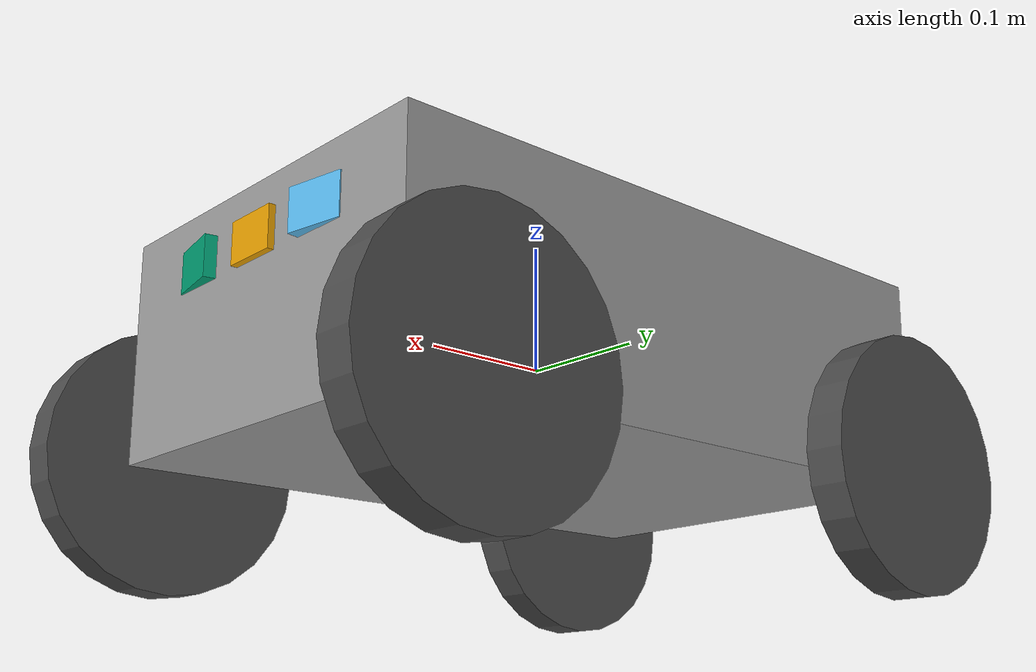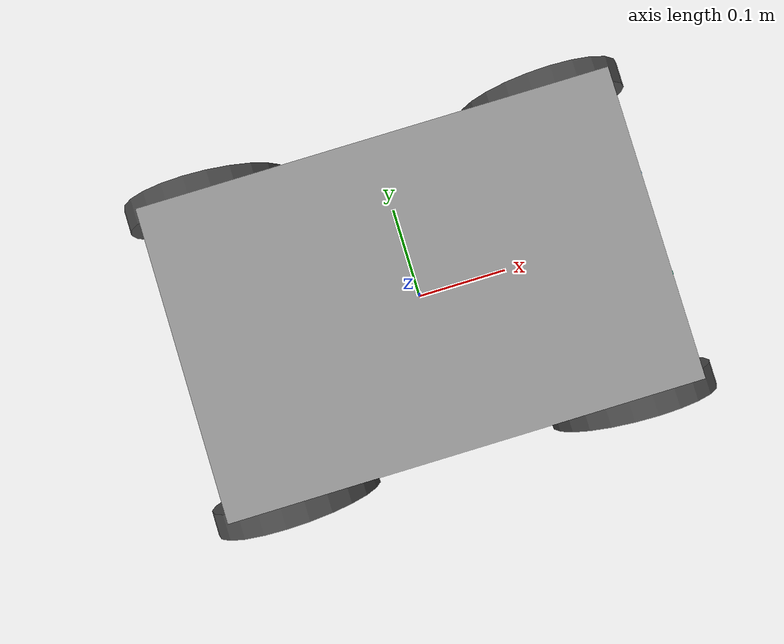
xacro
<?xml version="1.0"?>

<robot name="differential_drive_robot" xmlns:xacro="http://www.ros.org/wiki/xacro">

  <!-- Including other files -->
  <xacro:include filename="ultrasounds.xacro" />
  <xacro:include filename="ros2_control.xacro" />

  <!-- Body Dimensions -->
  <xacro:property name="body_link_x_dim" value="0.5"/>
  <xacro:property name="body_link_y_dim" value="0.33"/>
  <xacro:property name="body_link_z_dim" value="0.168"/>

  <!-- Wheel Dimensions -->
  <xacro:property name="wheel_link_radius" value="0.1"/>  <!-- 10 cm radio -->
  <xacro:property name="wheel_link_length" value="0.03"/>
  <xacro:property name="wheel_link_z_location" value="-0.075"/>
  <xacro:property name="wheel_link_y_location" value="0.005"/>

  <!-- Pi Constant -->
  <xacro:property name="pi_const" value="3.14159265"/>

  <!-- Robot Body and Wheel Mass -->
  <xacro:property name="body_mass" value="3.5"/>
  <xacro:property name="wheel_mass" value="0.35"/>

  <!-- Moments of Inertia of the Wheel -->
  <xacro:property name="Iz_wheel" value="${0.5*wheel_mass*wheel_link_radius*wheel_link_radius}"/>
  <xacro:property name="I_wheel"  value="${(1.0/12.0)*wheel_mass*(3*wheel_link_radius*wheel_link_radius+wheel_link_length*wheel_link_length)}"/>

  <xacro:macro name="inertia_wheel">
    <inertial>
      <origin xyz="0.0 0.0 0.0" rpy="0.0 0.0 0.0"/>
      <mass value="${wheel_mass}"/>
      <inertia ixx="${I_wheel}" ixy="0.0" ixz="0.0"
               iyy="${I_wheel}" iyz="0.0" izz="${Iz_wheel}" />
    </inertial>
  </xacro:macro>

  <!-- Extra Gazebo Options -->
  <xacro:include filename="$(find lawn_robot)/model/robot.gazebo" />

  <!-- Dummy link, otherwise Gazebo will complain -->
  <link name="dummy"/>
  <joint name="dummy_joint" type="fixed">
    <parent link="dummy"/>
    <child link="body_link"/>
  </joint>

  <!-- BODY LINK -->
  <link name="body_link">
    <visual>
      <geometry>
        <box size="${body_link_x_dim} ${body_link_y_dim} ${body_link_z_dim}" />
      </geometry>
      <origin xyz="0 0 0" rpy="0 0 0"/>
    </visual>

    <collision>
      <geometry>
        <box size="${body_link_x_dim} ${body_link_y_dim} ${body_link_z_dim}" />
      </geometry>
      <origin xyz="0 0 0" rpy="0 0 0"/>
    </collision>

    <inertial>
      <origin xyz="0 0 0" rpy="0 0 0"/>
      <mass value="${body_mass}" />
      <inertia
        ixx="${(1.0/12.0)*body_mass*(body_link_y_dim*body_link_y_dim+body_link_z_dim*body_link_z_dim)}"
        ixy="0" ixz="0"
        iyy="${(1.0/12.0)*body_mass*(body_link_x_dim*body_link_x_dim+body_link_z_dim*body_link_z_dim)}"
        iyz="0"
        izz="${(1.0/12.0)*body_mass*(body_link_y_dim*body_link_y_dim+body_link_x_dim*body_link_x_dim)}" />
    </inertial>
  </link>

  <!-- BACK RIGHT WHEEL -->
  <joint name="wheel1_joint" type="continuous">
    <parent link="body_link"/>
    <child link="wheel1_link"/>
    <origin xyz="${-body_link_x_dim/2+0.4*wheel_link_radius}
                 ${-body_link_y_dim/2-((wheel_link_length/2)+wheel_link_y_location)}
                 ${wheel_link_z_location}"
            rpy="0 0 0"/>
    <axis xyz="0 1 0"/>
    <limit effort="1000" velocity="1000"/>
    <dynamics damping="0.05" friction="0.05" />
  </joint>

  <link name="wheel1_link">
    <visual>
      <origin xyz="0 0 0" rpy="${pi_const/2} 0 0"/>
      <geometry>
        <cylinder radius="${wheel_link_radius}" length="${wheel_link_length}"/>
      </geometry>
    </visual>

    <collision>
      <origin xyz="0 0 0" rpy="0 0 0"/>
      <geometry>
        <sphere radius="${wheel_link_radius}"/>
      </geometry>
    </collision>

    <xacro:inertia_wheel />
  </link>

  <!-- BACK LEFT WHEEL -->
  <joint name="wheel2_joint" type="continuous">
    <parent link="body_link"/>
    <child link="wheel2_link"/>
    <origin xyz="${-body_link_x_dim/2+0.4*wheel_link_radius}
                 ${body_link_y_dim/2+((wheel_link_length/2)+wheel_link_y_location)}
                 ${wheel_link_z_location}"
            rpy="0 0 0"/>
    <axis xyz="0 1 0"/>
    <limit effort="1000" velocity="1000"/>
    <dynamics damping="0.05" friction="0.05" />
  </joint>

  <link name="wheel2_link">
    <visual>
      <origin xyz="0 0 0" rpy="${pi_const/2} 0 0"/>
      <geometry>
        <cylinder radius="${wheel_link_radius}" length="${wheel_link_length}"/>
      </geometry>
    </visual>

    <collision>
      <origin xyz="0 0 0" rpy="0 0 0"/>
      <geometry>
        <sphere radius="${wheel_link_radius}"/>
      </geometry>
    </collision>

    <xacro:inertia_wheel />
  </link>

  <!-- FRONT RIGHT WHEEL -->
  <joint name="wheel3_joint" type="continuous">
    <parent link="body_link"/>
    <child link="wheel3_link"/>
    <origin xyz="${body_link_x_dim/2-0.4*wheel_link_radius}
                 ${-body_link_y_dim/2-((wheel_link_length/2)+wheel_link_y_location)}
                 ${wheel_link_z_location}"
            rpy="0 0 0"/>
    <axis xyz="0 1 0"/>
    <limit effort="1000" velocity="1000"/>
    <dynamics damping="0.05" friction="0.05" />
  </joint>

  <link name="wheel3_link">
    <visual>
      <origin xyz="0 0 0" rpy="${pi_const/2} 0 0"/>
      <geometry>
        <cylinder radius="${wheel_link_radius}" length="${wheel_link_length}"/>
      </geometry>
    </visual>

    <collision>
      <origin xyz="0 0 0" rpy="0 0 0"/>
      <geometry>
        <sphere radius="${wheel_link_radius}"/>
      </geometry>
    </collision>

    <xacro:inertia_wheel />
  </link>

  <!-- FRONT LEFT WHEEL -->
  <joint name="wheel4_joint" type="continuous">
    <parent link="body_link"/>
    <child link="wheel4_link"/>
    <origin xyz="${body_link_x_dim/2-0.4*wheel_link_radius}
                 ${body_link_y_dim/2+((wheel_link_length/2)+wheel_link_y_location)}
                 ${wheel_link_z_location}"
            rpy="0 0 0"/>
    <axis xyz="0 1 0"/>
    <limit effort="1000" velocity="1000"/>
    <dynamics damping="0.05" friction="0.05" />
  </joint>

  <link name="wheel4_link">
    <visual>
      <origin xyz="0 0 0" rpy="${pi_const/2} 0 0"/>
      <geometry>
        <cylinder radius="${wheel_link_radius}" length="${wheel_link_length}"/>
      </geometry>
    </visual>

    <collision>
      <origin xyz="0 0 0" rpy="0 0 0"/>
      <geometry>
        <sphere radius="${wheel_link_radius}"/>
      </geometry>
    </collision>

    <xacro:inertia_wheel />
  </link>

</robot>

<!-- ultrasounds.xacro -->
<robot name="differential_drive_robot" xmlns:xacro="http://www.ros.org/wiki/xacro">

<!-- Ultrasound 1 Joint-->
<joint name="ultrasonic_joint1" type="fixed">
    <parent link="body_link"/>
    <child link="ultrasonic_frame1"/>
    <origin xyz="0.25 0.0 0.045" rpy="0.0 0.0 0.0"/>
</joint>

<link name="ultrasonic_frame1">
    <visual>
        <geometry>
            <box size="0.01 0.046 0.031"/>
        </geometry>
    </visual>
    <collision>
        <geometry>
            <box size="0.01 0.046 0.031"/>
        </geometry>
    </collision>
</link>

<gazebo reference="ultrasonic_frame1">
    <sensor name="ultrasonic1" type="ray">
        <pose>0 0 0 0 0 0</pose>
        <visualize>true</visualize>
        <update_rate>20</update_rate>
        <ray>
            <scan>
                <horizontal>
                    <samples>20</samples>
                    <resolution>1</resolution>
                    <min_angle>-0.2618</min_angle>
                    <max_angle>0.2618</max_angle>
                </horizontal>
            </scan>
            <range>
                <min>0.05</min>
                <max>4.0</max>
                <resolution>0.01</resolution>
            </range>
        </ray>
        <plugin name="ultrasonic_pub1" filename="libgazebo_ros_ray_sensor.so">
            <ros>
                <argument>~/out:=scan</argument>
            </ros>
            <output_type>sensor_msgs/LaserScan</output_type>
            <frame_name>ultrasonic_frame1</frame_name>
        </plugin>
    </sensor>
</gazebo>

<!-- Ultrasound 2 Joint-->
<joint name="ultrasonic_joint2" type="fixed">
    <parent link="body_link"/>
    <child link="ultrasonic_frame2"/>
    <origin xyz="0.25 0.075 0.045" rpy="0.0 0.0 0.174533"/>
</joint>

<link name="ultrasonic_frame2">
    <visual>
        <geometry>
            <box size="0.01 0.046 0.031"/>
        </geometry>
    </visual>
    <collision>
        <geometry>
            <box size="0.01 0.046 0.031"/>
        </geometry>
    </collision>
</link>

<gazebo reference="ultrasonic_frame2">
    <sensor name="ultrasonic2" type="ray">
        <pose>0 0 0 0 0 0</pose>
        <visualize>true</visualize>
        <update_rate>20</update_rate>
        <ray>
            <scan>
                <horizontal>
                    <samples>20</samples>
                    <resolution>1</resolution>
                    <min_angle>-0.2618</min_angle>
                    <max_angle>0.2618</max_angle>
                </horizontal>
            </scan>
            <range>
                <min>0.05</min>
                <max>4.0</max>
                <resolution>0.01</resolution>
            </range>
        </ray>
        <plugin name="ultrasonic_pub2" filename="libgazebo_ros_ray_sensor.so">
            <ros>
                <argument>~/out:=scan</argument>
            </ros>
            <output_type>sensor_msgs/LaserScan</output_type>
            <frame_name>ultrasonic_frame2</frame_name>
        </plugin>
    </sensor>
</gazebo>

<!-- Ultrasound 3 Joint-->
<joint name="ultrasonic_joint3" type="fixed">
    <parent link="body_link"/>
    <child link="ultrasonic_frame3"/>
    <origin xyz="0.25 -0.075 0.045" rpy="0.0 0.0 -0.174533"/>
</joint>

<link name="ultrasonic_frame3">
    <visual>
        <geometry>
            <box size="0.01 0.046 0.031"/>
        </geometry>
    </visual>
    <collision>
        <geometry>
            <box size="0.01 0.046 0.031"/>
        </geometry>
    </collision>
</link>

<gazebo reference="ultrasonic_frame3">
    <sensor name="ultrasonic3" type="ray">
        <pose>0 0 0 0 0 0</pose>
        <visualize>true</visualize>
        <update_rate>20</update_rate>
        <ray>
            <scan>
                <horizontal>
                    <samples>20</samples>
                    <resolution>1</resolution>
                    <min_angle>-0.2618</min_angle>
                    <max_angle>0.2618</max_angle>
                </horizontal>
            </scan>
            <range>
                <min>0.05</min>
                <max>4.0</max>
                <resolution>0.01</resolution>
            </range>
        </ray>
        <plugin name="ultrasonic_pub3" filename="libgazebo_ros_ray_sensor.so">
            <ros>
                <argument>~/out:=scan</argument>
            </ros>
            <output_type>sensor_msgs/LaserScan</output_type>
            <frame_name>ultrasonic_frame3</frame_name>
        </plugin>
    </sensor>
</gazebo>

</robot>
